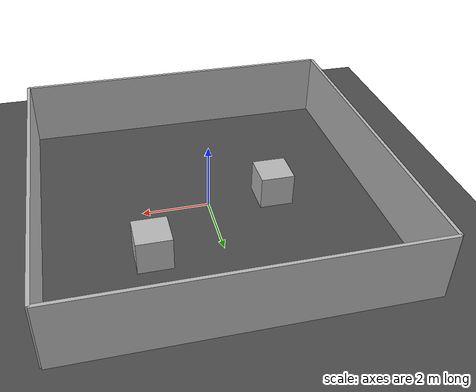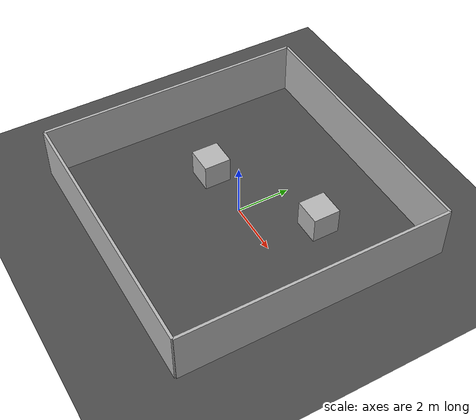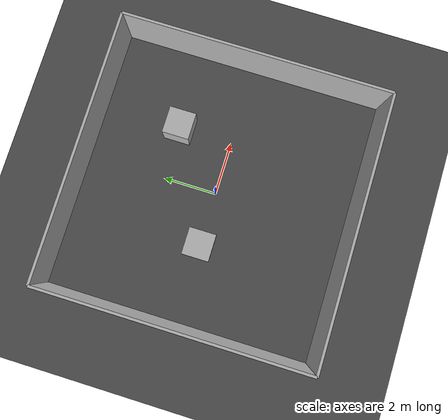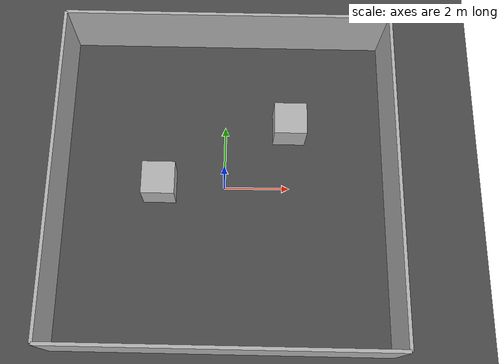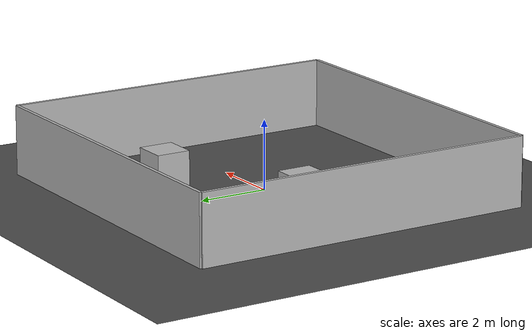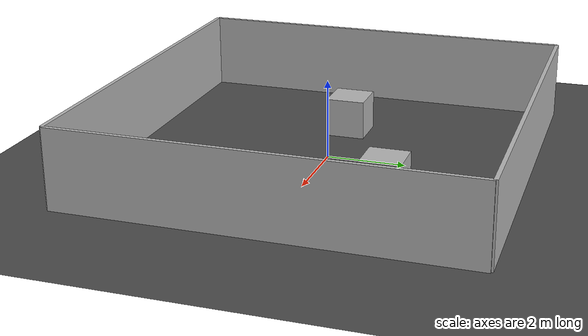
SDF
<?xml version="1.0" ?>
<sdf version="1.7">
  <world name="aero_test">
    <!-- Physics -->
    <physics type="dart"/>

    <!-- Sun (light) -->
    <light type="directional" name="sun">
      <cast_shadows>true</cast_shadows>
      <pose>0 0 10 0 -0 0</pose>
      <diffuse>1 1 1 1</diffuse>
      <specular>0.1 0.1 0.1 1</specular>
      <attenuation>
        <range>1000</range>
        <constant>0.9</constant>
        <linear>0.01</linear>
        <quadratic>0.001</quadratic>
      </attenuation>
      <direction>-0.5 0.5 -1</direction>
    </light>

    <!-- Ground plane -->
    <model name="ground_plane">
      <static>true</static>
      <link name="link">
        <collision name="collision">
          <geometry>
            <plane>
              <normal>0 0 1</normal>
              <size>100 100</size>
            </plane>
          </geometry>
          <surface><friction><ode/></friction></surface>
        </collision>
        <visual name="visual">
          <geometry>
            <plane>
              <normal>0 0 1</normal>
              <size>100 100</size>
            </plane>
          </geometry>
          <material>
            <ambient>0.3 0.3 0.3 1</ambient>
            <diffuse>0.3 0.3 0.3 1</diffuse>
            <specular>0.01 0.01 0.01 1</specular>
          </material>
        </visual>
      </link>
    </model>

    <!-- Walls -->
    <model name="walls">
      <static>true</static>
      <link name="link">
        <!-- Four box walls -->
        <collision name="north_wall_col">
          <geometry><box><size>10 0.1 2</size></box></geometry>
          <pose>0 5 1 0 0 0</pose>
        </collision>
        <visual name="north_wall_vis">
          <geometry><box><size>10 0.1 2</size></box></geometry>
          <pose>0 5 1 0 0 0</pose>
        </visual>

        <collision name="south_wall_col">
          <geometry><box><size>10 0.1 2</size></box></geometry>
          <pose>0 -5 1 0 0 0</pose>
        </collision>
        <visual name="south_wall_vis">
          <geometry><box><size>10 0.1 2</size></box></geometry>
          <pose>0 -5 1 0 0 0</pose>
        </visual>

        <collision name="east_wall_col">
          <geometry><box><size>0.1 10 2</size></box></geometry>
          <pose>5 0 1 0 0 0</pose>
        </collision>
        <visual name="east_wall_vis">
          <geometry><box><size>0.1 10 2</size></box></geometry>
          <pose>5 0 1 0 0 0</pose>
        </visual>

        <collision name="west_wall_col">
          <geometry><box><size>0.1 10 2</size></box></geometry>
          <pose>-5 0 1 0 0 0</pose>
        </collision>
        <visual name="west_wall_vis">
          <geometry><box><size>0.1 10 2</size></box></geometry>
          <pose>-5 0 1 0 0 0</pose>
        </visual>
      </link>
    </model>

    <!-- Obstacles -->
    <model name="box1">
      <pose>-2 0 0.5 0 0 0</pose>
      <static>true</static>
      <link name="link">
        <collision name="col"><geometry><box><size>1 1 1</size></box></geometry></collision>
        <visual name="vis"><geometry><box><size>1 1 1</size></box></geometry></visual>
      </link>
    </model>

    <model name="box2">
      <pose>2 2 0.5 0 0 0</pose>
      <static>true</static>
      <link name="link">
        <collision name="col"><geometry><box><size>1 1 1</size></box></geometry></collision>
        <visual name="vis"><geometry><box><size>1 1 1</size></box></geometry></visual>
      </link>
    </model>

  </world>
</sdf>
